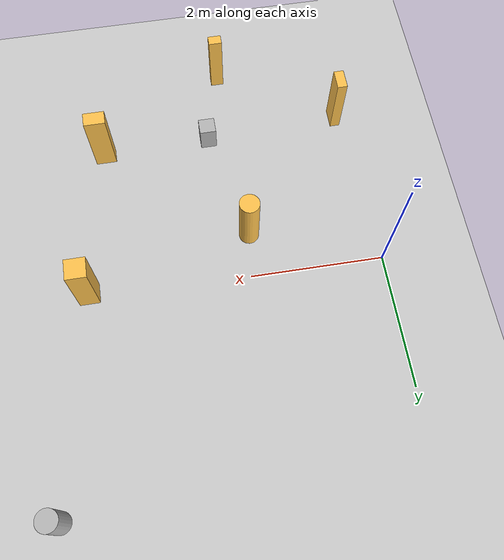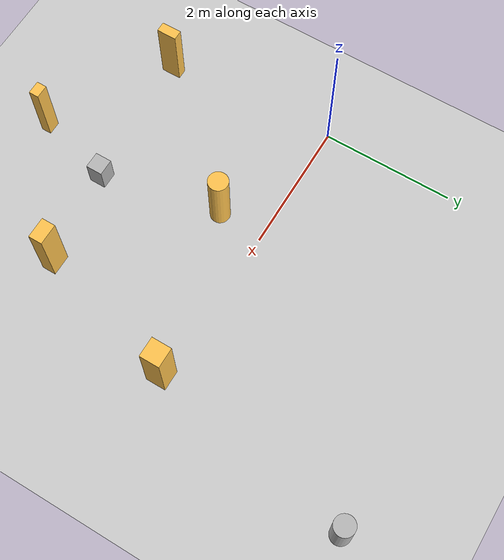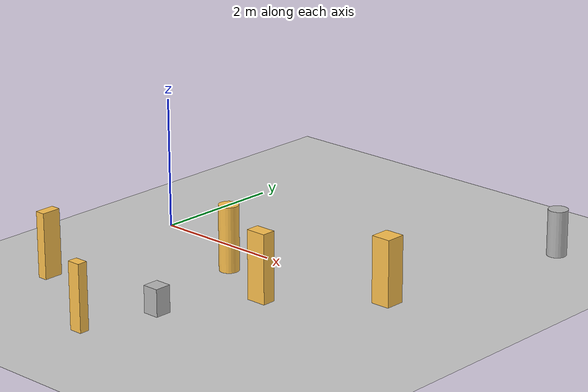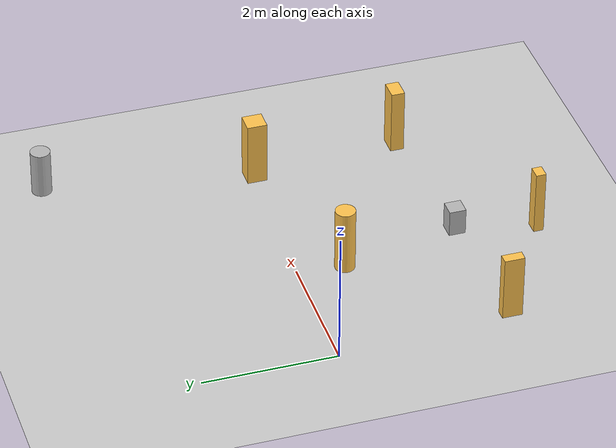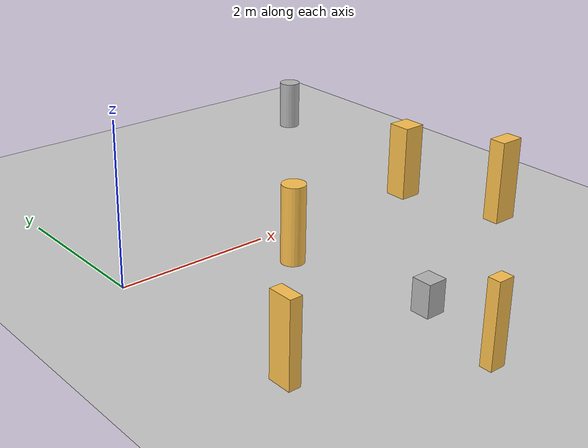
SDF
<sdf version='1.4'>
  <world name='default'>
    <light name='sun' type='directional'>
      <cast_shadows>1</cast_shadows>
      <pose>0 0 10 0 -0 0</pose>
      <diffuse>0.8 0.8 0.8 1</diffuse>
      <specular>0.2 0.2 0.2 1</specular>
      <attenuation>
        <range>1000</range>
        <constant>0.9</constant>
        <linear>0.01</linear>
        <quadratic>0.001</quadratic>
      </attenuation>
      <direction>0.5 0.1 -0.9</direction>
    </light>
    <model name='ground_plane'>
      <static>1</static>
      <link name='link'>
        <collision name='collision'>
          <geometry>
            <plane>
              <normal>0 0 1</normal>
              <size>100 100</size>
            </plane>
          </geometry>
          <surface>
            <friction>
              <ode>
                <mu>100</mu>
                <mu2>50</mu2>
              </ode>
            </friction>
            <bounce/>
            <contact>
              <ode/>
            </contact>
          </surface>
          <max_contacts>10</max_contacts>
        </collision>
        <visual name='visual'>
          <cast_shadows>0</cast_shadows>
          <geometry>
            <plane>
              <normal>0 0 1</normal>
              <size>100 100</size>
            </plane>
          </geometry>
          <material>
            <script>
              <uri>file://media/materials/scripts/gazebo.material</uri>
              <name>Gazebo/Grey</name>
            </script>
          </material>
        </visual>
        <velocity_decay>
          <linear>0</linear>
          <angular>0</angular>
        </velocity_decay>
        <self_collide>0</self_collide>
        <kinematic>0</kinematic>
        <gravity>1</gravity>
      </link>
    </model>

    <scene>
      <ambient>0.4 0.4 0.4 1</ambient>
      <background>0.7 0.7 0.7 1</background>
      <shadows>0</shadows>
    </scene>

    <physics type='ode'>
      <max_step_size>0.01</max_step_size>
      <real_time_factor>1</real_time_factor>
      <real_time_update_rate>1000.0</real_time_update_rate>
      <gravity>0 0 -9.8</gravity>
      <ode>
        <solver>
          <type>quick</type>
          <iters>150</iters>
          <precon_iters>0</precon_iters>
          <sor>1.400000</sor>
          <use_dynamic_moi_rescaling>1</use_dynamic_moi_rescaling>
        </solver>
        <constraints>
          <cfm>0.00001</cfm>
          <erp>0.2</erp>
          <contact_max_correcting_vel>2000.000000</contact_max_correcting_vel>
          <contact_surface_layer>0.01000</contact_surface_layer>
        </constraints>
      </ode>
    </physics>

    <gui fullscreen='0'>
      <camera name='user_camera'>
        <pose>2.6 -1.69 12.2 0 1.56 3.14</pose>
        <view_controller>orbit</view_controller>
      </camera>
    </gui>

    <!-- Dynamic obstacles -->

    <!-- A set of round and rectangle obstacles -->
    <include>
      <uri>model://static_column_round_obstacles_v0</uri>
      <pose>2.4 -2.1 0 0 0 0</pose>
    </include>

    <model name="dyn_obstacle1">
      <pose>2.3 -2.5 0.0 0 0 0</pose>
      <link name="link_ob1">
        <collision name="collision">
          <geometry>
            <box>
              <size>0.25 0.25 0.8</size>
            </box>
          </geometry>
        </collision>

        <visual name="visual">
          <geometry>
            <box>
              <size>0.25 0.25 0.8</size>
            </box>
          </geometry>
        </visual>
      </link>
      <plugin name="dyn_obs1" filename="libmov_box2.so"/>
    </model>

    <model name="dyn_obstacle3">
      <pose>5. 3.0 0.2 0 0 0</pose>
      <link name="link">
        <inertial>
          <pose> 0 0 0.5 0 0 0 </pose>
          <mass> 5 </mass>
          <inertia>
            <ixx>5.0</ixx>
            <ixy>0.0</ixy>
            <ixz>0.0</ixz>
            <iyy> 5.0 </iyy>
            <iyz> 0.0 </iyz>
            <izz> 20.0 </izz>
          </inertia>
        </inertial>
        <collision name="collision">
          <geometry>
            <cylinder>
              <radius>.15</radius>
              <length>1.0</length>
            </cylinder>
          </geometry>
          <surface>
            <friction>
              <ode>
                <mu>100</mu>
                <mu2>50</mu2>
              </ode>
            </friction>
            <bounce/>
            <contact>
              <ode/>
            </contact>
          </surface>
        </collision>

        <visual name="visual">
          <geometry>
            <cylinder>
              <radius>.15</radius>
              <length>1.0</length>
            </cylinder>
          </geometry>
        </visual>
      </link>

      <plugin name="dyn_obst3" filename="libmov_box5.so"/>
    </model>

  </world>
</sdf>

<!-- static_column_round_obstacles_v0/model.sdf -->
<sdf version='1.5'>
  <model name='static_obstacle'>
    <link name='Column_3'>
      <pose frame=''>2.0 2.0 0 0 0 0</pose>
      <self_collide>0</self_collide>
      <kinematic>0</kinematic>
      <visual name='Column_3_Visual'>
        <pose frame=''>0 0 0.5 0 -0 0</pose>
        <geometry>
          <box>
            <size>0.3 0.3 1</size>
          </box>
        </geometry>
        <material>
          <script>
            <uri>file://media/materials/scripts/gazebo.material</uri>
            <name>Gazebo/Grey</name>
          </script>
          <ambient>1 0.764706 0.305882 1</ambient>
          <diffuse>0.7 0.7 0.7 1</diffuse>
          <specular>0.01 0.01 0.01 1</specular>
          <emissive>0 0 0 1</emissive>
          <shader type='pixel'/>
        </material>
        <cast_shadows>1</cast_shadows>
        <transparency>0</transparency>
      </visual>
      <collision name='Column_3_Collision'>
        <laser_retro>0</laser_retro>
        <max_contacts>10</max_contacts>
        <pose frame=''>0 0 0.5 0 -0 0</pose>
        <geometry>
          <box>
            <size>0.3 0.3 1</size>
          </box>
        </geometry>
        <surface>
          <friction>
            <ode>
              <mu>1</mu>
              <mu2>1</mu2>
              <fdir1>0 0 0</fdir1>
              <slip1>0</slip1>
              <slip2>0</slip2>
            </ode>
          </friction>
          <bounce>
            <restitution_coefficient>0</restitution_coefficient>
            <threshold>1e+06</threshold>
          </bounce>
          <contact>
            <collide_without_contact>0</collide_without_contact>
            <collide_without_contact_bitmask>1</collide_without_contact_bitmask>
            <collide_bitmask>1</collide_bitmask>
            <ode>
              <soft_cfm>0</soft_cfm>
              <soft_erp>0.2</soft_erp>
              <kp>1e+13</kp>
              <kd>1</kd>
              <max_vel>0.01</max_vel>
              <min_depth>0</min_depth>
            </ode>
            <bullet>
              <split_impulse>1</split_impulse>
              <split_impulse_penetration_threshold>-0.01</split_impulse_penetration_threshold>
              <soft_cfm>0</soft_cfm>
              <soft_erp>0.2</soft_erp>
              <kp>1e+13</kp>
              <kd>1</kd>
            </bullet>
          </contact>
        </surface>
      </collision>
    </link>

    <link name='Column_1'>
      <pose frame=''>-0.409926 -1.55115 0 0 -0 3.14159</pose>
      <self_collide>0</self_collide>
      <kinematic>0</kinematic>
      <visual name='Column_1_Visual'>
        <pose frame=''>0 0 0.5 0 -0 0</pose>
        <geometry>
          <box>
            <size>0.2 0.15 1</size>
          </box>
        </geometry>
        <material>
          <script>
            <uri>file://media/materials/scripts/gazebo.material</uri>
            <name>Gazebo/Grey</name>
          </script>
          <ambient>1 0.764706 0.305882 1</ambient>
          <diffuse>0.7 0.7 0.7 1</diffuse>
          <specular>0.01 0.01 0.01 1</specular>
          <emissive>0 0 0 1</emissive>
          <shader type='pixel'/>
        </material>
        <cast_shadows>1</cast_shadows>
        <transparency>0</transparency>
      </visual>
      <collision name='Column_1_Collision'>
        <laser_retro>0</laser_retro>
        <max_contacts>10</max_contacts>
        <pose frame=''>0 0 0.5 0 -0 0</pose>
        <geometry>
          <box>
            <size>0.2 0.15 1</size>
          </box>
        </geometry>
        <surface>
          <friction>
            <ode>
              <mu>1</mu>
              <mu2>1</mu2>
              <fdir1>0 0 0</fdir1>
              <slip1>0</slip1>
              <slip2>0</slip2>
            </ode>
          </friction>
          <bounce>
            <restitution_coefficient>0</restitution_coefficient>
            <threshold>1e+06</threshold>
          </bounce>
          <contact>
            <collide_without_contact>0</collide_without_contact>
            <collide_without_contact_bitmask>1</collide_without_contact_bitmask>
            <collide_bitmask>1</collide_bitmask>
            <ode>
              <soft_cfm>0</soft_cfm>
              <soft_erp>0.2</soft_erp>
              <kp>1e+13</kp>
              <kd>1</kd>
              <max_vel>0.01</max_vel>
              <min_depth>0</min_depth>
            </ode>
            <bullet>
              <split_impulse>1</split_impulse>
              <split_impulse_penetration_threshold>-0.01</split_impulse_penetration_threshold>
              <soft_cfm>0</soft_cfm>
              <soft_erp>0.2</soft_erp>
              <kp>1e+13</kp>
              <kd>1</kd>
            </bullet>
          </contact>
        </surface>
      </collision>
    </link>
    <link name='Column_2'>
      <pose frame=''>-2.2 -0.5 0 0 -0 1.5708</pose>
      <self_collide>0</self_collide>
      <kinematic>0</kinematic>
      <visual name='Column_2_Visual'>
        <pose frame=''>0 0 0.5 0 -0 0</pose>
        <geometry>
          <box>
            <size>0.3 0.15 1</size>
          </box>
        </geometry>
        <material>
          <script>
            <uri>file://media/materials/scripts/gazebo.material</uri>
            <name>Gazebo/Grey</name>
          </script>
          <ambient>1 0.764706 0.305882 1</ambient>
          <diffuse>0.7 0.7 0.7 1</diffuse>
          <specular>0.01 0.01 0.01 1</specular>
          <emissive>0 0 0 1</emissive>
          <shader type='pixel'/>
        </material>
        <cast_shadows>1</cast_shadows>
        <transparency>0</transparency>
      </visual>
      <collision name='Column_2_Collision'>
        <laser_retro>0</laser_retro>
        <max_contacts>10</max_contacts>
        <pose frame=''>0 0 0.5 0 -0 0</pose>
        <geometry>
          <box>
            <size>0.3 0.15 1</size>
          </box>
        </geometry>
        <surface>
          <friction>
            <ode>
              <mu>1</mu>
              <mu2>1</mu2>
              <fdir1>0 0 0</fdir1>
              <slip1>0</slip1>
              <slip2>0</slip2>
            </ode>
          </friction>
          <bounce>
            <restitution_coefficient>0</restitution_coefficient>
            <threshold>1e+06</threshold>
          </bounce>
          <contact>
            <collide_without_contact>0</collide_without_contact>
            <collide_without_contact_bitmask>1</collide_without_contact_bitmask>
            <collide_bitmask>1</collide_bitmask>
            <ode>
              <soft_cfm>0</soft_cfm>
              <soft_erp>0.2</soft_erp>
              <kp>1e+13</kp>
              <kd>1</kd>
              <max_vel>0.01</max_vel>
              <min_depth>0</min_depth>
            </ode>
            <bullet>
              <split_impulse>1</split_impulse>
              <split_impulse_penetration_threshold>-0.01</split_impulse_penetration_threshold>
              <soft_cfm>0</soft_cfm>
              <soft_erp>0.2</soft_erp>
              <kp>1e+13</kp>
              <kd>1</kd>
            </bullet>
          </contact>
        </surface>
      </collision>
    </link>
    <link name='Column_4'>
      <pose frame=''>1.5 0.0 0.5 0 -0 3.14159</pose>
      <self_collide>0</self_collide>
      <kinematic>0</kinematic>
      <visual name='Column_4_Visual'>
        <pose frame=''>0 0 0.5 0 -0 0</pose>
        <geometry>
          <box>
            <size>0.3 0.2 1</size>
          </box>
        </geometry>
        <material>
          <script>
            <uri>file://media/materials/scripts/gazebo.material</uri>
            <name>Gazebo/Grey</name>
          </script>
          <ambient>1 0.764706 0.305882 1</ambient>
          <diffuse>0.7 0.7 0.7 1</diffuse>
          <specular>0.01 0.01 0.01 1</specular>
          <emissive>0 0 0 1</emissive>
          <shader type='pixel'/>
        </material>
        <cast_shadows>1</cast_shadows>
        <transparency>0</transparency>
      </visual>
      <collision name='Column_4_Collision'>
        <laser_retro>0</laser_retro>
        <max_contacts>10</max_contacts>
        <pose frame=''>0 0 0.5 0 -0 0</pose>
        <geometry>
          <box>
            <size>0.3 0.2 1</size>
          </box>
        </geometry>
        <surface>
          <friction>
            <ode>
              <mu>1</mu>
              <mu2>1</mu2>
              <fdir1>0 0 0</fdir1>
              <slip1>0</slip1>
              <slip2>0</slip2>
            </ode>
          </friction>
          <bounce>
            <restitution_coefficient>0</restitution_coefficient>
            <threshold>1e+06</threshold>
          </bounce>
          <contact>
            <collide_without_contact>0</collide_without_contact>
            <collide_without_contact_bitmask>1</collide_without_contact_bitmask>
            <collide_bitmask>1</collide_bitmask>
            <ode>
              <soft_cfm>0</soft_cfm>
              <soft_erp>0.2</soft_erp>
              <kp>1e+13</kp>
              <kd>1</kd>
              <max_vel>0.01</max_vel>
              <min_depth>0</min_depth>
            </ode>
          </contact>
        </surface>
      </collision>
    </link>
    <link name='Cylinder_1'>
      <pose frame=''>-0.48 1.4 0 0 -0 2.02352</pose>
      <self_collide>0</self_collide>
      <kinematic>0</kinematic>
      <visual name='Cylinder_1_Visual'>
        <pose frame=''>0 0 0.5 0 -0 0</pose>
        <geometry>
          <cylinder>
            <radius>.15</radius>
            <length>1.0</length>
          </cylinder>
        </geometry>
        <material>
          <script>
            <uri>file://media/materials/scripts/gazebo.material</uri>
            <name>Gazebo/Grey</name>
          </script>
          <ambient>1 0.764706 0.305882 1</ambient>
          <diffuse>0.7 0.7 0.7 1</diffuse>
          <specular>0.01 0.01 0.01 1</specular>
          <emissive>0 0 0 1</emissive>
          <shader type='pixel'/>
        </material>
        <cast_shadows>1</cast_shadows>
        <transparency>0</transparency>
      </visual>
      <collision name='Cylinder_1_Collision'>
        <laser_retro>0</laser_retro>
        <max_contacts>10</max_contacts>
        <pose frame=''>0 0 0.5 0 -0 0</pose>
        <geometry>
         <cylinder>
            <radius>.15</radius>
            <length>1.0</length>
          </cylinder>
        </geometry>
        <surface>
          <friction>
            <ode>
              <mu>1</mu>
              <mu2>1</mu2>
              <fdir1>0 0 0</fdir1>
              <slip1>0</slip1>
              <slip2>0</slip2>
            </ode>
          </friction>
          <bounce>
            <restitution_coefficient>0</restitution_coefficient>
            <threshold>1e+06</threshold>
          </bounce>
          <contact>
            <collide_without_contact>0</collide_without_contact>
            <collide_without_contact_bitmask>1</collide_without_contact_bitmask>
            <collide_bitmask>1</collide_bitmask>
            <ode>
              <soft_cfm>0</soft_cfm>
              <soft_erp>0.2</soft_erp>
              <kp>1e+13</kp>
              <kd>1</kd>
              <max_vel>0.01</max_vel>
              <min_depth>0</min_depth>
            </ode>
          </contact>
        </surface>
      </collision>
    </link>

    <static>1</static>
    <allow_auto_disable>1</allow_auto_disable>
  </model>

</sdf>
